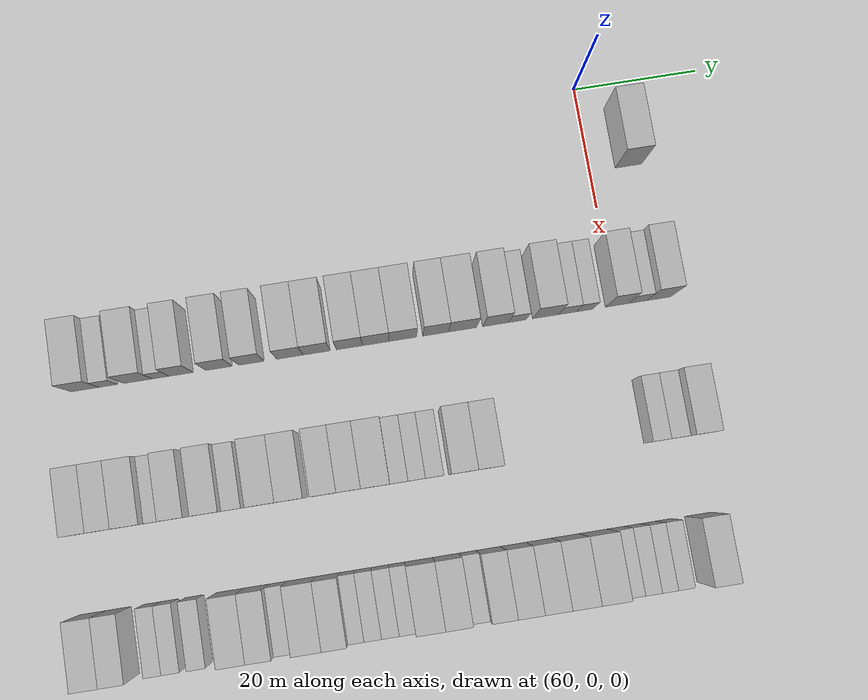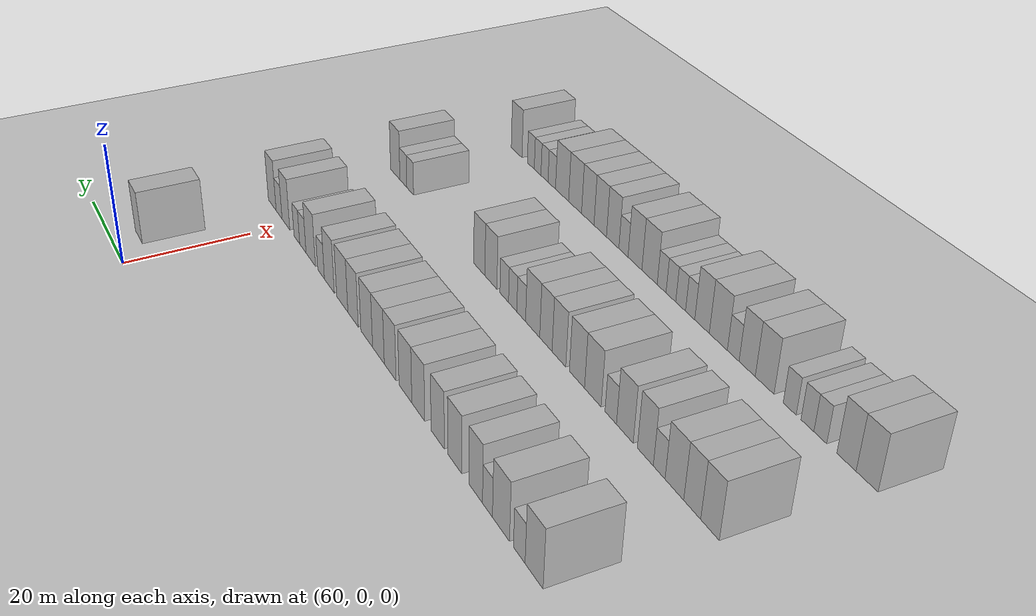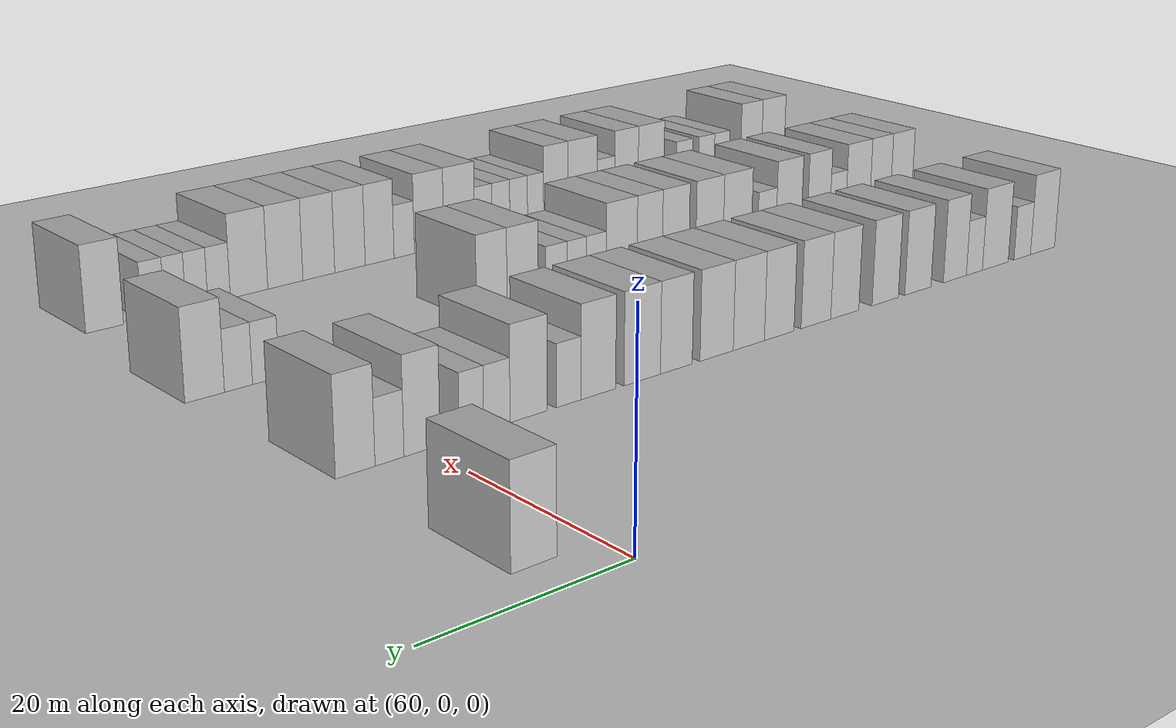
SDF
<sdf version="1.6">
 <world name="default">
  <include>
   <name>ground_plane_2</name>
   <uri>model://HANNAS_ground_plane</uri>
   <pose>100 0 0  0 0 0</pose>
  </include>
  <model name="building_468">
   <static>1</static>
   <pose>69.0000 6.3513 0 0.000000 0.000000 0.000000</pose>
   <link name="link">
    <pose>0 0 4.50 0 0 0</pose>
    <collision name="collision"><geometry><box><size>10.0000 4.3464 9.0000</size></box></geometry></collision>
    <visual name="visual">
     <cast_shadows>0</cast_shadows>
     <geometry><box><size>10.0000 4.3464 9.0000</size></box></geometry>
     <material>
      <script>
       <uri>model://HANNAS_wall/materials/scripts</uri>
       <uri>model://HANNAS_wall/materials/textures</uri>
       <name>vrc/HANNAS_wall</name>
      </script>
     </material>
    </visual>
   </link>
  </model>
  <model name="building_636">
   <static>1</static>
   <pose>91.0000 -83.9862 0 0.000000 0.000000 0.000000</pose>
   <link name="link">
    <pose>0 0 4.50 0 0 0</pose>
    <collision name="collision"><geometry><box><size>10.0000 4.3414 9.0000</size></box></geometry></collision>
    <visual name="visual">
     <cast_shadows>0</cast_shadows>
     <geometry><box><size>10.0000 4.3414 9.0000</size></box></geometry>
     <material>
      <script>
       <uri>model://HANNAS_wall/materials/scripts</uri>
       <uri>model://HANNAS_wall/materials/textures</uri>
       <name>vrc/HANNAS_wall</name>
      </script>
     </material>
    </visual>
   </link>
  </model>
  <model name="building_637">
   <static>1</static>
   <pose>91.0000 -80.3657 0 0.000000 0.000000 0.000000</pose>
   <link name="link">
    <pose>0 0 3.00 0 0 0</pose>
    <collision name="collision"><geometry><box><size>10.0000 2.8997 6.0000</size></box></geometry></collision>
    <visual name="visual">
     <cast_shadows>0</cast_shadows>
     <geometry><box><size>10.0000 2.8997 6.0000</size></box></geometry>
     <material>
      <script>
       <uri>model://HANNAS_wall/materials/scripts</uri>
       <uri>model://HANNAS_wall/materials/textures</uri>
       <name>vrc/HANNAS_wall</name>
      </script>
     </material>
    </visual>
   </link>
  </model>
  <model name="building_638">
   <static>1</static>
   <pose>91.0000 -75.6958 0 0.000000 0.000000 0.000000</pose>
   <link name="link">
    <pose>0 0 4.50 0 0 0</pose>
    <collision name="collision"><geometry><box><size>10.0000 4.4400 9.0000</size></box></geometry></collision>
    <visual name="visual">
     <cast_shadows>0</cast_shadows>
     <geometry><box><size>10.0000 4.4400 9.0000</size></box></geometry>
     <material>
      <script>
       <uri>model://HANNAS_wall/materials/scripts</uri>
       <uri>model://HANNAS_wall/materials/textures</uri>
       <name>vrc/HANNAS_wall</name>
      </script>
     </material>
    </visual>
   </link>
  </model>
  <model name="building_639">
   <static>1</static>
   <pose>91.0000 -72.1327 0 0.000000 0.000000 0.000000</pose>
   <link name="link">
    <pose>0 0 3.00 0 0 0</pose>
    <collision name="collision"><geometry><box><size>10.0000 2.6863 6.0000</size></box></geometry></collision>
    <visual name="visual">
     <cast_shadows>0</cast_shadows>
     <geometry><box><size>10.0000 2.6863 6.0000</size></box></geometry>
     <material>
      <script>
       <uri>model://HANNAS_wall/materials/scripts</uri>
       <uri>model://HANNAS_wall/materials/textures</uri>
       <name>vrc/HANNAS_wall</name>
      </script>
     </material>
    </visual>
   </link>
  </model>
  <model name="building_640">
   <static>1</static>
   <pose>91.0000 -68.8923 0 0.000000 0.000000 0.000000</pose>
   <link name="link">
    <pose>0 0 4.50 0 0 0</pose>
    <collision name="collision"><geometry><box><size>10.0000 3.7945 9.0000</size></box></geometry></collision>
    <visual name="visual">
     <cast_shadows>0</cast_shadows>
     <geometry><box><size>10.0000 3.7945 9.0000</size></box></geometry>
     <material>
      <script>
       <uri>model://HANNAS_wall/materials/scripts</uri>
       <uri>model://HANNAS_wall/materials/textures</uri>
       <name>vrc/HANNAS_wall</name>
      </script>
     </material>
    </visual>
   </link>
  </model>
  <model name="building_641">
   <static>1</static>
   <pose>91.0000 -62.9117 0 0.000000 0.000000 0.000000</pose>
   <link name="link">
    <pose>0 0 4.50 0 0 0</pose>
    <collision name="collision"><geometry><box><size>10.0000 4.1666 9.0000</size></box></geometry></collision>
    <visual name="visual">
     <cast_shadows>0</cast_shadows>
     <geometry><box><size>10.0000 4.1666 9.0000</size></box></geometry>
     <material>
      <script>
       <uri>model://HANNAS_wall/materials/scripts</uri>
       <uri>model://HANNAS_wall/materials/textures</uri>
       <name>vrc/HANNAS_wall</name>
      </script>
     </material>
    </visual>
   </link>
  </model>
  <model name="building_642">
   <static>1</static>
   <pose>91.0000 -57.8082 0 0.000000 0.000000 0.000000</pose>
   <link name="link">
    <pose>0 0 4.50 0 0 0</pose>
    <collision name="collision"><geometry><box><size>10.0000 4.0405 9.0000</size></box></geometry></collision>
    <visual name="visual">
     <cast_shadows>0</cast_shadows>
     <geometry><box><size>10.0000 4.0405 9.0000</size></box></geometry>
     <material>
      <script>
       <uri>model://HANNAS_wall/materials/scripts</uri>
       <uri>model://HANNAS_wall/materials/textures</uri>
       <name>vrc/HANNAS_wall</name>
      </script>
     </material>
    </visual>
   </link>
  </model>
  <model name="building_643">
   <static>1</static>
   <pose>91.0000 -51.7124 0 0.000000 0.000000 0.000000</pose>
   <link name="link">
    <pose>0 0 4.50 0 0 0</pose>
    <collision name="collision"><geometry><box><size>10.0000 4.1511 9.0000</size></box></geometry></collision>
    <visual name="visual">
     <cast_shadows>0</cast_shadows>
     <geometry><box><size>10.0000 4.1511 9.0000</size></box></geometry>
     <material>
      <script>
       <uri>model://HANNAS_wall/materials/scripts</uri>
       <uri>model://HANNAS_wall/materials/textures</uri>
       <name>vrc/HANNAS_wall</name>
      </script>
     </material>
    </visual>
   </link>
  </model>
  <model name="building_644">
   <static>1</static>
   <pose>91.0000 -47.4999 0 0.000000 0.000000 0.000000</pose>
   <link name="link">
    <pose>0 0 4.50 0 0 0</pose>
    <collision name="collision"><geometry><box><size>10.0000 4.2740 9.0000</size></box></geometry></collision>
    <visual name="visual">
     <cast_shadows>0</cast_shadows>
     <geometry><box><size>10.0000 4.2740 9.0000</size></box></geometry>
     <material>
      <script>
       <uri>model://HANNAS_wall/materials/scripts</uri>
       <uri>model://HANNAS_wall/materials/textures</uri>
       <name>vrc/HANNAS_wall</name>
      </script>
     </material>
    </visual>
   </link>
  </model>
  <model name="building_645">
   <static>1</static>
   <pose>91.0000 -42.3046 0 0.000000 0.000000 0.000000</pose>
   <link name="link">
    <pose>0 0 4.50 0 0 0</pose>
    <collision name="collision"><geometry><box><size>10.0000 4.1164 9.0000</size></box></geometry></collision>
    <visual name="visual">
     <cast_shadows>0</cast_shadows>
     <geometry><box><size>10.0000 4.1164 9.0000</size></box></geometry>
     <material>
      <script>
       <uri>model://HANNAS_wall/materials/scripts</uri>
       <uri>model://HANNAS_wall/materials/textures</uri>
       <name>vrc/HANNAS_wall</name>
      </script>
     </material>
    </visual>
   </link>
  </model>
  <model name="building_646">
   <static>1</static>
   <pose>91.0000 -38.1368 0 0.000000 0.000000 0.000000</pose>
   <link name="link">
    <pose>0 0 4.50 0 0 0</pose>
    <collision name="collision"><geometry><box><size>10.0000 4.2192 9.0000</size></box></geometry></collision>
    <visual name="visual">
     <cast_shadows>0</cast_shadows>
     <geometry><box><size>10.0000 4.2192 9.0000</size></box></geometry>
     <material>
      <script>
       <uri>model://HANNAS_wall/materials/scripts</uri>
       <uri>model://HANNAS_wall/materials/textures</uri>
       <name>vrc/HANNAS_wall</name>
      </script>
     </material>
    </visual>
   </link>
  </model>
  <model name="building_647">
   <static>1</static>
   <pose>91.0000 -33.8407 0 0.000000 0.000000 0.000000</pose>
   <link name="link">
    <pose>0 0 4.50 0 0 0</pose>
    <collision name="collision"><geometry><box><size>10.0000 4.3729 9.0000</size></box></geometry></collision>
    <visual name="visual">
     <cast_shadows>0</cast_shadows>
     <geometry><box><size>10.0000 4.3729 9.0000</size></box></geometry>
     <material>
      <script>
       <uri>model://HANNAS_wall/materials/scripts</uri>
       <uri>model://HANNAS_wall/materials/textures</uri>
       <name>vrc/HANNAS_wall</name>
      </script>
     </material>
    </visual>
   </link>
  </model>
  <model name="building_648">
   <static>1</static>
   <pose>91.0000 -28.6353 0 0.000000 0.000000 0.000000</pose>
   <link name="link">
    <pose>0 0 4.50 0 0 0</pose>
    <collision name="collision"><geometry><box><size>10.0000 4.0381 9.0000</size></box></geometry></collision>
    <visual name="visual">
     <cast_shadows>0</cast_shadows>
     <geometry><box><size>10.0000 4.0381 9.0000</size></box></geometry>
     <material>
      <script>
       <uri>model://HANNAS_wall/materials/scripts</uri>
       <uri>model://HANNAS_wall/materials/textures</uri>
       <name>vrc/HANNAS_wall</name>
      </script>
     </material>
    </visual>
   </link>
  </model>
  <model name="building_649">
   <static>1</static>
   <pose>91.0000 -24.3789 0 0.000000 0.000000 0.000000</pose>
   <link name="link">
    <pose>0 0 4.50 0 0 0</pose>
    <collision name="collision"><geometry><box><size>10.0000 4.4747 9.0000</size></box></geometry></collision>
    <visual name="visual">
     <cast_shadows>0</cast_shadows>
     <geometry><box><size>10.0000 4.4747 9.0000</size></box></geometry>
     <material>
      <script>
       <uri>model://HANNAS_wall/materials/scripts</uri>
       <uri>model://HANNAS_wall/materials/textures</uri>
       <name>vrc/HANNAS_wall</name>
      </script>
     </material>
    </visual>
   </link>
  </model>
  <model name="building_650">
   <static>1</static>
   <pose>91.0000 -19.0808 0 0.000000 0.000000 0.000000</pose>
   <link name="link">
    <pose>0 0 4.50 0 0 0</pose>
    <collision name="collision"><geometry><box><size>10.0000 4.1214 9.0000</size></box></geometry></collision>
    <visual name="visual">
     <cast_shadows>0</cast_shadows>
     <geometry><box><size>10.0000 4.1214 9.0000</size></box></geometry>
     <material>
      <script>
       <uri>model://HANNAS_wall/materials/scripts</uri>
       <uri>model://HANNAS_wall/materials/textures</uri>
       <name>vrc/HANNAS_wall</name>
      </script>
     </material>
    </visual>
   </link>
  </model>
  <model name="building_651">
   <static>1</static>
   <pose>91.0000 -15.5852 0 0.000000 0.000000 0.000000</pose>
   <link name="link">
    <pose>0 0 3.00 0 0 0</pose>
    <collision name="collision"><geometry><box><size>10.0000 2.8698 6.0000</size></box></geometry></collision>
    <visual name="visual">
     <cast_shadows>0</cast_shadows>
     <geometry><box><size>10.0000 2.8698 6.0000</size></box></geometry>
     <material>
      <script>
       <uri>model://HANNAS_wall/materials/scripts</uri>
       <uri>model://HANNAS_wall/materials/textures</uri>
       <name>vrc/HANNAS_wall</name>
      </script>
     </material>
    </visual>
   </link>
  </model>
  <model name="building_652">
   <static>1</static>
   <pose>91.0000 -11.0698 0 0.000000 0.000000 0.000000</pose>
   <link name="link">
    <pose>0 0 4.50 0 0 0</pose>
    <collision name="collision"><geometry><box><size>10.0000 4.1611 9.0000</size></box></geometry></collision>
    <visual name="visual">
     <cast_shadows>0</cast_shadows>
     <geometry><box><size>10.0000 4.1611 9.0000</size></box></geometry>
     <material>
      <script>
       <uri>model://HANNAS_wall/materials/scripts</uri>
       <uri>model://HANNAS_wall/materials/textures</uri>
       <name>vrc/HANNAS_wall</name>
      </script>
     </material>
    </visual>
   </link>
  </model>
  <model name="building_653">
   <static>1</static>
   <pose>91.0000 -7.5494 0 0.000000 0.000000 0.000000</pose>
   <link name="link">
    <pose>0 0 3.00 0 0 0</pose>
    <collision name="collision"><geometry><box><size>10.0000 2.8796 6.0000</size></box></geometry></collision>
    <visual name="visual">
     <cast_shadows>0</cast_shadows>
     <geometry><box><size>10.0000 2.8796 6.0000</size></box></geometry>
     <material>
      <script>
       <uri>model://HANNAS_wall/materials/scripts</uri>
       <uri>model://HANNAS_wall/materials/textures</uri>
       <name>vrc/HANNAS_wall</name>
      </script>
     </material>
    </visual>
   </link>
  </model>
  <model name="building_654">
   <static>1</static>
   <pose>91.0000 -4.8065 0 0.000000 0.000000 0.000000</pose>
   <link name="link">
    <pose>0 0 3.00 0 0 0</pose>
    <collision name="collision"><geometry><box><size>10.0000 2.6063 6.0000</size></box></geometry></collision>
    <visual name="visual">
     <cast_shadows>0</cast_shadows>
     <geometry><box><size>10.0000 2.6063 6.0000</size></box></geometry>
     <material>
      <script>
       <uri>model://HANNAS_wall/materials/scripts</uri>
       <uri>model://HANNAS_wall/materials/textures</uri>
       <name>vrc/HANNAS_wall</name>
      </script>
     </material>
    </visual>
   </link>
  </model>
  <model name="building_655">
   <static>1</static>
   <pose>91.0000 0.3535 0 0.000000 0.000000 0.000000</pose>
   <link name="link">
    <pose>0 0 4.50 0 0 0</pose>
    <collision name="collision"><geometry><box><size>10.0000 3.7136 9.0000</size></box></geometry></collision>
    <visual name="visual">
     <cast_shadows>0</cast_shadows>
     <geometry><box><size>10.0000 3.7136 9.0000</size></box></geometry>
     <material>
      <script>
       <uri>model://HANNAS_wall/materials/scripts</uri>
       <uri>model://HANNAS_wall/materials/textures</uri>
       <name>vrc/HANNAS_wall</name>
      </script>
     </material>
    </visual>
   </link>
  </model>
  <model name="building_656">
   <static>1</static>
   <pose>91.0000 3.6603 0 0.000000 0.000000 0.000000</pose>
   <link name="link">
    <pose>0 0 3.00 0 0 0</pose>
    <collision name="collision"><geometry><box><size>10.0000 2.8999 6.0000</size></box></geometry></collision>
    <visual name="visual">
     <cast_shadows>0</cast_shadows>
     <geometry><box><size>10.0000 2.8999 6.0000</size></box></geometry>
     <material>
      <script>
       <uri>model://HANNAS_wall/materials/scripts</uri>
       <uri>model://HANNAS_wall/materials/textures</uri>
       <name>vrc/HANNAS_wall</name>
      </script>
     </material>
    </visual>
   </link>
  </model>
  <model name="building_657">
   <static>1</static>
   <pose>91.0000 7.0460 0 0.000000 0.000000 0.000000</pose>
   <link name="link">
    <pose>0 0 4.50 0 0 0</pose>
    <collision name="collision"><geometry><box><size>10.0000 3.8716 9.0000</size></box></geometry></collision>
    <visual name="visual">
     <cast_shadows>0</cast_shadows>
     <geometry><box><size>10.0000 3.8716 9.0000</size></box></geometry>
     <material>
      <script>
       <uri>model://HANNAS_wall/materials/scripts</uri>
       <uri>model://HANNAS_wall/materials/textures</uri>
       <name>vrc/HANNAS_wall</name>
      </script>
     </material>
    </visual>
   </link>
  </model>
  <model name="building_808">
   <static>1</static>
   <pose>113.0000 -86.0175 0 0.000000 0.000000 0.000000</pose>
   <link name="link">
    <pose>0 0 4.50 0 0 0</pose>
    <collision name="collision"><geometry><box><size>10.0000 3.8777 9.0000</size></box></geometry></collision>
    <visual name="visual">
     <cast_shadows>0</cast_shadows>
     <geometry><box><size>10.0000 3.8777 9.0000</size></box></geometry>
     <material>
      <script>
       <uri>model://HANNAS_wall/materials/scripts</uri>
       <uri>model://HANNAS_wall/materials/textures</uri>
       <name>vrc/HANNAS_wall</name>
      </script>
     </material>
    </visual>
   </link>
  </model>
  <model name="building_809">
   <static>1</static>
   <pose>113.0000 -82.2497 0 0.000000 0.000000 0.000000</pose>
   <link name="link">
    <pose>0 0 4.50 0 0 0</pose>
    <collision name="collision"><geometry><box><size>10.0000 3.6580 9.0000</size></box></geometry></collision>
    <visual name="visual">
     <cast_shadows>0</cast_shadows>
     <geometry><box><size>10.0000 3.6580 9.0000</size></box></geometry>
     <material>
      <script>
       <uri>model://HANNAS_wall/materials/scripts</uri>
       <uri>model://HANNAS_wall/materials/textures</uri>
       <name>vrc/HANNAS_wall</name>
      </script>
     </material>
    </visual>
   </link>
  </model>
  <model name="building_810">
   <static>1</static>
   <pose>113.0000 -78.3382 0 0.000000 0.000000 0.000000</pose>
   <link name="link">
    <pose>0 0 4.50 0 0 0</pose>
    <collision name="collision"><geometry><box><size>10.0000 4.1650 9.0000</size></box></geometry></collision>
    <visual name="visual">
     <cast_shadows>0</cast_shadows>
     <geometry><box><size>10.0000 4.1650 9.0000</size></box></geometry>
     <material>
      <script>
       <uri>model://HANNAS_wall/materials/scripts</uri>
       <uri>model://HANNAS_wall/materials/textures</uri>
       <name>vrc/HANNAS_wall</name>
      </script>
     </material>
    </visual>
   </link>
  </model>
  <model name="building_811">
   <static>1</static>
   <pose>113.0000 -74.9124 0 0.000000 0.000000 0.000000</pose>
   <link name="link">
    <pose>0 0 3.00 0 0 0</pose>
    <collision name="collision"><geometry><box><size>10.0000 2.6865 6.0000</size></box></geometry></collision>
    <visual name="visual">
     <cast_shadows>0</cast_shadows>
     <geometry><box><size>10.0000 2.6865 6.0000</size></box></geometry>
     <material>
      <script>
       <uri>model://HANNAS_wall/materials/scripts</uri>
       <uri>model://HANNAS_wall/materials/textures</uri>
       <name>vrc/HANNAS_wall</name>
      </script>
     </material>
    </visual>
   </link>
  </model>
  <model name="building_812">
   <static>1</static>
   <pose>113.0000 -71.6795 0 0.000000 0.000000 0.000000</pose>
   <link name="link">
    <pose>0 0 4.50 0 0 0</pose>
    <collision name="collision"><geometry><box><size>10.0000 3.7793 9.0000</size></box></geometry></collision>
    <visual name="visual">
     <cast_shadows>0</cast_shadows>
     <geometry><box><size>10.0000 3.7793 9.0000</size></box></geometry>
     <material>
      <script>
       <uri>model://HANNAS_wall/materials/scripts</uri>
       <uri>model://HANNAS_wall/materials/textures</uri>
       <name>vrc/HANNAS_wall</name>
      </script>
     </material>
    </visual>
   </link>
  </model>
  <model name="building_813">
   <static>1</static>
   <pose>113.0000 -66.7289 0 0.000000 0.000000 0.000000</pose>
   <link name="link">
    <pose>0 0 4.50 0 0 0</pose>
    <collision name="collision"><geometry><box><size>10.0000 4.1219 9.0000</size></box></geometry></collision>
    <visual name="visual">
     <cast_shadows>0</cast_shadows>
     <geometry><box><size>10.0000 4.1219 9.0000</size></box></geometry>
     <material>
      <script>
       <uri>model://HANNAS_wall/materials/scripts</uri>
       <uri>model://HANNAS_wall/materials/textures</uri>
       <name>vrc/HANNAS_wall</name>
      </script>
     </material>
    </visual>
   </link>
  </model>
  <model name="building_814">
   <static>1</static>
   <pose>113.0000 -63.2073 0 0.000000 0.000000 0.000000</pose>
   <link name="link">
    <pose>0 0 3.00 0 0 0</pose>
    <collision name="collision"><geometry><box><size>10.0000 2.9214 6.0000</size></box></geometry></collision>
    <visual name="visual">
     <cast_shadows>0</cast_shadows>
     <geometry><box><size>10.0000 2.9214 6.0000</size></box></geometry>
     <material>
      <script>
       <uri>model://HANNAS_wall/materials/scripts</uri>
       <uri>model://HANNAS_wall/materials/textures</uri>
       <name>vrc/HANNAS_wall</name>
      </script>
     </material>
    </visual>
   </link>
  </model>
  <model name="building_815">
   <static>1</static>
   <pose>113.0000 -58.5537 0 0.000000 0.000000 0.000000</pose>
   <link name="link">
    <pose>0 0 4.50 0 0 0</pose>
    <collision name="collision"><geometry><box><size>10.0000 4.3857 9.0000</size></box></geometry></collision>
    <visual name="visual">
     <cast_shadows>0</cast_shadows>
     <geometry><box><size>10.0000 4.3857 9.0000</size></box></geometry>
     <material>
      <script>
       <uri>model://HANNAS_wall/materials/scripts</uri>
       <uri>model://HANNAS_wall/materials/textures</uri>
       <name>vrc/HANNAS_wall</name>
      </script>
     </material>
    </visual>
   </link>
  </model>
  <model name="building_816">
   <static>1</static>
   <pose>113.0000 -54.2807 0 0.000000 0.000000 0.000000</pose>
   <link name="link">
    <pose>0 0 4.50 0 0 0</pose>
    <collision name="collision"><geometry><box><size>10.0000 4.1604 9.0000</size></box></geometry></collision>
    <visual name="visual">
     <cast_shadows>0</cast_shadows>
     <geometry><box><size>10.0000 4.1604 9.0000</size></box></geometry>
     <material>
      <script>
       <uri>model://HANNAS_wall/materials/scripts</uri>
       <uri>model://HANNAS_wall/materials/textures</uri>
       <name>vrc/HANNAS_wall</name>
      </script>
     </material>
    </visual>
   </link>
  </model>
  <model name="building_817">
   <static>1</static>
   <pose>113.0000 -49.2377 0 0.000000 0.000000 0.000000</pose>
   <link name="link">
    <pose>0 0 4.50 0 0 0</pose>
    <collision name="collision"><geometry><box><size>10.0000 3.9256 9.0000</size></box></geometry></collision>
    <visual name="visual">
     <cast_shadows>0</cast_shadows>
     <geometry><box><size>10.0000 3.9256 9.0000</size></box></geometry>
     <material>
      <script>
       <uri>model://HANNAS_wall/materials/scripts</uri>
       <uri>model://HANNAS_wall/materials/textures</uri>
       <name>vrc/HANNAS_wall</name>
      </script>
     </material>
    </visual>
   </link>
  </model>
  <model name="building_818">
   <static>1</static>
   <pose>113.0000 -45.4627 0 0.000000 0.000000 0.000000</pose>
   <link name="link">
    <pose>0 0 4.50 0 0 0</pose>
    <collision name="collision"><geometry><box><size>10.0000 3.6245 9.0000</size></box></geometry></collision>
    <visual name="visual">
     <cast_shadows>0</cast_shadows>
     <geometry><box><size>10.0000 3.6245 9.0000</size></box></geometry>
     <material>
      <script>
       <uri>model://HANNAS_wall/materials/scripts</uri>
       <uri>model://HANNAS_wall/materials/textures</uri>
       <name>vrc/HANNAS_wall</name>
      </script>
     </material>
    </visual>
   </link>
  </model>
  <model name="building_819">
   <static>1</static>
   <pose>113.0000 -41.5003 0 0.000000 0.000000 0.000000</pose>
   <link name="link">
    <pose>0 0 4.50 0 0 0</pose>
    <collision name="collision"><geometry><box><size>10.0000 4.3004 9.0000</size></box></geometry></collision>
    <visual name="visual">
     <cast_shadows>0</cast_shadows>
     <geometry><box><size>10.0000 4.3004 9.0000</size></box></geometry>
     <material>
      <script>
       <uri>model://HANNAS_wall/materials/scripts</uri>
       <uri>model://HANNAS_wall/materials/textures</uri>
       <name>vrc/HANNAS_wall</name>
      </script>
     </material>
    </visual>
   </link>
  </model>
  <model name="building_820">
   <static>1</static>
   <pose>113.0000 -37.9817 0 0.000000 0.000000 0.000000</pose>
   <link name="link">
    <pose>0 0 3.00 0 0 0</pose>
    <collision name="collision"><geometry><box><size>10.0000 2.7368 6.0000</size></box></geometry></collision>
    <visual name="visual">
     <cast_shadows>0</cast_shadows>
     <geometry><box><size>10.0000 2.7368 6.0000</size></box></geometry>
     <material>
      <script>
       <uri>model://HANNAS_wall/materials/scripts</uri>
       <uri>model://HANNAS_wall/materials/textures</uri>
       <name>vrc/HANNAS_wall</name>
      </script>
     </material>
    </visual>
   </link>
  </model>
  <model name="building_821">
   <static>1</static>
   <pose>113.0000 -35.3040 0 0.000000 0.000000 0.000000</pose>
   <link name="link">
    <pose>0 0 3.00 0 0 0</pose>
    <collision name="collision"><geometry><box><size>10.0000 2.6185 6.0000</size></box></geometry></collision>
    <visual name="visual">
     <cast_shadows>0</cast_shadows>
     <geometry><box><size>10.0000 2.6185 6.0000</size></box></geometry>
     <material>
      <script>
       <uri>model://HANNAS_wall/materials/scripts</uri>
       <uri>model://HANNAS_wall/materials/textures</uri>
       <name>vrc/HANNAS_wall</name>
      </script>
     </material>
    </visual>
   </link>
  </model>
  <model name="building_822">
   <static>1</static>
   <pose>113.0000 -32.6008 0 0.000000 0.000000 0.000000</pose>
   <link name="link">
    <pose>0 0 3.00 0 0 0</pose>
    <collision name="collision"><geometry><box><size>10.0000 2.7881 6.0000</size></box></geometry></collision>
    <visual name="visual">
     <cast_shadows>0</cast_shadows>
     <geometry><box><size>10.0000 2.7881 6.0000</size></box></geometry>
     <material>
      <script>
       <uri>model://HANNAS_wall/materials/scripts</uri>
       <uri>model://HANNAS_wall/materials/textures</uri>
       <name>vrc/HANNAS_wall</name>
      </script>
     </material>
    </visual>
   </link>
  </model>
  <model name="building_823">
   <static>1</static>
   <pose>113.0000 -28.1898 0 0.000000 0.000000 0.000000</pose>
   <link name="link">
    <pose>0 0 4.50 0 0 0</pose>
    <collision name="collision"><geometry><box><size>10.0000 4.0340 9.0000</size></box></geometry></collision>
    <visual name="visual">
     <cast_shadows>0</cast_shadows>
     <geometry><box><size>10.0000 4.0340 9.0000</size></box></geometry>
     <material>
      <script>
       <uri>model://HANNAS_wall/materials/scripts</uri>
       <uri>model://HANNAS_wall/materials/textures</uri>
       <name>vrc/HANNAS_wall</name>
      </script>
     </material>
    </visual>
   </link>
  </model>
  <model name="building_824">
   <static>1</static>
   <pose>113.0000 -24.2489 0 0.000000 0.000000 0.000000</pose>
   <link name="link">
    <pose>0 0 4.50 0 0 0</pose>
    <collision name="collision"><geometry><box><size>10.0000 3.8478 9.0000</size></box></geometry></collision>
    <visual name="visual">
     <cast_shadows>0</cast_shadows>
     <geometry><box><size>10.0000 3.8478 9.0000</size></box></geometry>
     <material>
      <script>
       <uri>model://HANNAS_wall/materials/scripts</uri>
       <uri>model://HANNAS_wall/materials/textures</uri>
       <name>vrc/HANNAS_wall</name>
      </script>
     </material>
    </visual>
   </link>
  </model>
  <model name="building_825">
   <static>1</static>
   <pose>113.0000 1.8732 0 0.000000 0.000000 0.000000</pose>
   <link name="link">
    <pose>0 0 3.00 0 0 0</pose>
    <collision name="collision"><geometry><box><size>10.0000 2.7987 6.0000</size></box></geometry></collision>
    <visual name="visual">
     <cast_shadows>0</cast_shadows>
     <geometry><box><size>10.0000 2.7987 6.0000</size></box></geometry>
     <material>
      <script>
       <uri>model://HANNAS_wall/materials/scripts</uri>
       <uri>model://HANNAS_wall/materials/textures</uri>
       <name>vrc/HANNAS_wall</name>
      </script>
     </material>
    </visual>
   </link>
  </model>
  <model name="building_826">
   <static>1</static>
   <pose>113.0000 4.7271 0 0.000000 0.000000 0.000000</pose>
   <link name="link">
    <pose>0 0 3.00 0 0 0</pose>
    <collision name="collision"><geometry><box><size>10.0000 2.9091 6.0000</size></box></geometry></collision>
    <visual name="visual">
     <cast_shadows>0</cast_shadows>
     <geometry><box><size>10.0000 2.9091 6.0000</size></box></geometry>
     <material>
      <script>
       <uri>model://HANNAS_wall/materials/scripts</uri>
       <uri>model://HANNAS_wall/materials/textures</uri>
       <name>vrc/HANNAS_wall</name>
      </script>
     </material>
    </visual>
   </link>
  </model>
  <model name="building_827">
   <static>1</static>
   <pose>113.0000 8.1925 0 0.000000 0.000000 0.000000</pose>
   <link name="link">
    <pose>0 0 4.50 0 0 0</pose>
    <collision name="collision"><geometry><box><size>10.0000 4.0218 9.0000</size></box></geometry></collision>
    <visual name="visual">
     <cast_shadows>0</cast_shadows>
     <geometry><box><size>10.0000 4.0218 9.0000</size></box></geometry>
     <material>
      <script>
       <uri>model://HANNAS_wall/materials/scripts</uri>
       <uri>model://HANNAS_wall/materials/textures</uri>
       <name>vrc/HANNAS_wall</name>
      </script>
     </material>
    </visual>
   </link>
  </model>
  <model name="building_999">
   <static>1</static>
   <pose>135.0000 -86.9382 0 0.000000 0.000000 0.000000</pose>
   <link name="link">
    <pose>0 0 4.50 0 0 0</pose>
    <collision name="collision"><geometry><box><size>10.0000 4.1448 9.0000</size></box></geometry></collision>
    <visual name="visual">
     <cast_shadows>0</cast_shadows>
     <geometry><box><size>10.0000 4.1448 9.0000</size></box></geometry>
     <material>
      <script>
       <uri>model://HANNAS_wall/materials/scripts</uri>
       <uri>model://HANNAS_wall/materials/textures</uri>
       <name>vrc/HANNAS_wall</name>
      </script>
     </material>
    </visual>
   </link>
  </model>
  <model name="building_1000">
   <static>1</static>
   <pose>135.0000 -82.9886 0 0.000000 0.000000 0.000000</pose>
   <link name="link">
    <pose>0 0 4.50 0 0 0</pose>
    <collision name="collision"><geometry><box><size>10.0000 3.7544 9.0000</size></box></geometry></collision>
    <visual name="visual">
     <cast_shadows>0</cast_shadows>
     <geometry><box><size>10.0000 3.7544 9.0000</size></box></geometry>
     <material>
      <script>
       <uri>model://HANNAS_wall/materials/scripts</uri>
       <uri>model://HANNAS_wall/materials/textures</uri>
       <name>vrc/HANNAS_wall</name>
      </script>
     </material>
    </visual>
   </link>
  </model>
  <model name="building_1001">
   <static>1</static>
   <pose>135.0000 -77.8011 0 0.000000 0.000000 0.000000</pose>
   <link name="link">
    <pose>0 0 3.00 0 0 0</pose>
    <collision name="collision"><geometry><box><size>10.0000 2.6205 6.0000</size></box></geometry></collision>
    <visual name="visual">
     <cast_shadows>0</cast_shadows>
     <geometry><box><size>10.0000 2.6205 6.0000</size></box></geometry>
     <material>
      <script>
       <uri>model://HANNAS_wall/materials/scripts</uri>
       <uri>model://HANNAS_wall/materials/textures</uri>
       <name>vrc/HANNAS_wall</name>
      </script>
     </material>
    </visual>
   </link>
  </model>
  <model name="building_1002">
   <static>1</static>
   <pose>135.0000 -75.1418 0 0.000000 0.000000 0.000000</pose>
   <link name="link">
    <pose>0 0 3.00 0 0 0</pose>
    <collision name="collision"><geometry><box><size>10.0000 2.6983 6.0000</size></box></geometry></collision>
    <visual name="visual">
     <cast_shadows>0</cast_shadows>
     <geometry><box><size>10.0000 2.6983 6.0000</size></box></geometry>
     <material>
      <script>
       <uri>model://HANNAS_wall/materials/scripts</uri>
       <uri>model://HANNAS_wall/materials/textures</uri>
       <name>vrc/HANNAS_wall</name>
      </script>
     </material>
    </visual>
   </link>
  </model>
  <model name="building_1003">
   <static>1</static>
   <pose>135.0000 -71.3875 0 0.000000 0.000000 0.000000</pose>
   <link name="link">
    <pose>0 0 3.00 0 0 0</pose>
    <collision name="collision"><geometry><box><size>10.0000 2.8102 6.0000</size></box></geometry></collision>
    <visual name="visual">
     <cast_shadows>0</cast_shadows>
     <geometry><box><size>10.0000 2.8102 6.0000</size></box></geometry>
     <material>
      <script>
       <uri>model://HANNAS_wall/materials/scripts</uri>
       <uri>model://HANNAS_wall/materials/textures</uri>
       <name>vrc/HANNAS_wall</name>
      </script>
     </material>
    </visual>
   </link>
  </model>
  <model name="building_1004">
   <static>1</static>
   <pose>135.0000 -65.8659 0 0.000000 0.000000 0.000000</pose>
   <link name="link">
    <pose>0 0 4.50 0 0 0</pose>
    <collision name="collision"><geometry><box><size>10.0000 4.2329 9.0000</size></box></geometry></collision>
    <visual name="visual">
     <cast_shadows>0</cast_shadows>
     <geometry><box><size>10.0000 4.2329 9.0000</size></box></geometry>
     <material>
      <script>
       <uri>model://HANNAS_wall/materials/scripts</uri>
       <uri>model://HANNAS_wall/materials/textures</uri>
       <name>vrc/HANNAS_wall</name>
      </script>
     </material>
    </visual>
   </link>
  </model>
  <model name="building_1005">
   <static>1</static>
   <pose>135.0000 -61.8659 0 0.000000 0.000000 0.000000</pose>
   <link name="link">
    <pose>0 0 4.50 0 0 0</pose>
    <collision name="collision"><geometry><box><size>10.0000 3.7671 9.0000</size></box></geometry></collision>
    <visual name="visual">
     <cast_shadows>0</cast_shadows>
     <geometry><box><size>10.0000 3.7671 9.0000</size></box></geometry>
     <material>
      <script>
       <uri>model://HANNAS_wall/materials/scripts</uri>
       <uri>model://HANNAS_wall/materials/textures</uri>
       <name>vrc/HANNAS_wall</name>
      </script>
     </material>
    </visual>
   </link>
  </model>
  <model name="building_1006">
   <static>1</static>
   <pose>135.0000 -58.5855 0 0.000000 0.000000 0.000000</pose>
   <link name="link">
    <pose>0 0 3.00 0 0 0</pose>
    <collision name="collision"><geometry><box><size>10.0000 2.7936 6.0000</size></box></geometry></collision>
    <visual name="visual">
     <cast_shadows>0</cast_shadows>
     <geometry><box><size>10.0000 2.7936 6.0000</size></box></geometry>
     <material>
      <script>
       <uri>model://HANNAS_wall/materials/scripts</uri>
       <uri>model://HANNAS_wall/materials/textures</uri>
       <name>vrc/HANNAS_wall</name>
      </script>
     </material>
    </visual>
   </link>
  </model>
  <model name="building_1007">
   <static>1</static>
   <pose>135.0000 -54.9673 0 0.000000 0.000000 0.000000</pose>
   <link name="link">
    <pose>0 0 4.50 0 0 0</pose>
    <collision name="collision"><geometry><box><size>10.0000 4.4428 9.0000</size></box></geometry></collision>
    <visual name="visual">
     <cast_shadows>0</cast_shadows>
     <geometry><box><size>10.0000 4.4428 9.0000</size></box></geometry>
     <material>
      <script>
       <uri>model://HANNAS_wall/materials/scripts</uri>
       <uri>model://HANNAS_wall/materials/textures</uri>
       <name>vrc/HANNAS_wall</name>
      </script>
     </material>
    </visual>
   </link>
  </model>
  <model name="building_1008">
   <static>1</static>
   <pose>135.0000 -50.9040 0 0.000000 0.000000 0.000000</pose>
   <link name="link">
    <pose>0 0 4.50 0 0 0</pose>
    <collision name="collision"><geometry><box><size>10.0000 3.6838 9.0000</size></box></geometry></collision>
    <visual name="visual">
     <cast_shadows>0</cast_shadows>
     <geometry><box><size>10.0000 3.6838 9.0000</size></box></geometry>
     <material>
      <script>
       <uri>model://HANNAS_wall/materials/scripts</uri>
       <uri>model://HANNAS_wall/materials/textures</uri>
       <name>vrc/HANNAS_wall</name>
      </script>
     </material>
    </visual>
   </link>
  </model>
  <model name="building_1009">
   <static>1</static>
   <pose>135.0000 -47.8615 0 0.000000 0.000000 0.000000</pose>
   <link name="link">
    <pose>0 0 3.00 0 0 0</pose>
    <collision name="collision"><geometry><box><size>10.0000 2.4011 6.0000</size></box></geometry></collision>
    <visual name="visual">
     <cast_shadows>0</cast_shadows>
     <geometry><box><size>10.0000 2.4011 6.0000</size></box></geometry>
     <material>
      <script>
       <uri>model://HANNAS_wall/materials/scripts</uri>
       <uri>model://HANNAS_wall/materials/textures</uri>
       <name>vrc/HANNAS_wall</name>
      </script>
     </material>
    </visual>
   </link>
  </model>
  <model name="building_1010">
   <static>1</static>
   <pose>135.0000 -45.3691 0 0.000000 0.000000 0.000000</pose>
   <link name="link">
    <pose>0 0 3.00 0 0 0</pose>
    <collision name="collision"><geometry><box><size>10.0000 2.5838 6.0000</size></box></geometry></collision>
    <visual name="visual">
     <cast_shadows>0</cast_shadows>
     <geometry><box><size>10.0000 2.5838 6.0000</size></box></geometry>
     <material>
      <script>
       <uri>model://HANNAS_wall/materials/scripts</uri>
       <uri>model://HANNAS_wall/materials/textures</uri>
       <name>vrc/HANNAS_wall</name>
      </script>
     </material>
    </visual>
   </link>
  </model>
  <model name="building_1011">
   <static>1</static>
   <pose>135.0000 -42.7674 0 0.000000 0.000000 0.000000</pose>
   <link name="link">
    <pose>0 0 3.00 0 0 0</pose>
    <collision name="collision"><geometry><box><size>10.0000 2.6195 6.0000</size></box></geometry></collision>
    <visual name="visual">
     <cast_shadows>0</cast_shadows>
     <geometry><box><size>10.0000 2.6195 6.0000</size></box></geometry>
     <material>
      <script>
       <uri>model://HANNAS_wall/materials/scripts</uri>
       <uri>model://HANNAS_wall/materials/textures</uri>
       <name>vrc/HANNAS_wall</name>
      </script>
     </material>
    </visual>
   </link>
  </model>
  <model name="building_1012">
   <static>1</static>
   <pose>135.0000 -40.2419 0 0.000000 0.000000 0.000000</pose>
   <link name="link">
    <pose>0 0 3.00 0 0 0</pose>
    <collision name="collision"><geometry><box><size>10.0000 2.4315 6.0000</size></box></geometry></collision>
    <visual name="visual">
     <cast_shadows>0</cast_shadows>
     <geometry><box><size>10.0000 2.4315 6.0000</size></box></geometry>
     <material>
      <script>
       <uri>model://HANNAS_wall/materials/scripts</uri>
       <uri>model://HANNAS_wall/materials/textures</uri>
       <name>vrc/HANNAS_wall</name>
      </script>
     </material>
    </visual>
   </link>
  </model>
  <model name="building_1013">
   <static>1</static>
   <pose>135.0000 -36.8674 0 0.000000 0.000000 0.000000</pose>
   <link name="link">
    <pose>0 0 4.50 0 0 0</pose>
    <collision name="collision"><geometry><box><size>10.0000 4.3177 9.0000</size></box></geometry></collision>
    <visual name="visual">
     <cast_shadows>0</cast_shadows>
     <geometry><box><size>10.0000 4.3177 9.0000</size></box></geometry>
     <material>
      <script>
       <uri>model://HANNAS_wall/materials/scripts</uri>
       <uri>model://HANNAS_wall/materials/textures</uri>
       <name>vrc/HANNAS_wall</name>
      </script>
     </material>
    </visual>
   </link>
  </model>
  <model name="building_1014">
   <static>1</static>
   <pose>135.0000 -32.6911 0 0.000000 0.000000 0.000000</pose>
   <link name="link">
    <pose>0 0 4.50 0 0 0</pose>
    <collision name="collision"><geometry><box><size>10.0000 4.0349 9.0000</size></box></geometry></collision>
    <visual name="visual">
     <cast_shadows>0</cast_shadows>
     <geometry><box><size>10.0000 4.0349 9.0000</size></box></geometry>
     <material>
      <script>
       <uri>model://HANNAS_wall/materials/scripts</uri>
       <uri>model://HANNAS_wall/materials/textures</uri>
       <name>vrc/HANNAS_wall</name>
      </script>
     </material>
    </visual>
   </link>
  </model>
  <model name="building_1015">
   <static>1</static>
   <pose>135.0000 -29.3131 0 0.000000 0.000000 0.000000</pose>
   <link name="link">
    <pose>0 0 3.00 0 0 0</pose>
    <collision name="collision"><geometry><box><size>10.0000 2.7211 6.0000</size></box></geometry></collision>
    <visual name="visual">
     <cast_shadows>0</cast_shadows>
     <geometry><box><size>10.0000 2.7211 6.0000</size></box></geometry>
     <material>
      <script>
       <uri>model://HANNAS_wall/materials/scripts</uri>
       <uri>model://HANNAS_wall/materials/textures</uri>
       <name>vrc/HANNAS_wall</name>
      </script>
     </material>
    </visual>
   </link>
  </model>
  <model name="building_1016">
   <static>1</static>
   <pose>135.0000 -26.0619 0 0.000000 0.000000 0.000000</pose>
   <link name="link">
    <pose>0 0 4.50 0 0 0</pose>
    <collision name="collision"><geometry><box><size>10.0000 3.7813 9.0000</size></box></geometry></collision>
    <visual name="visual">
     <cast_shadows>0</cast_shadows>
     <geometry><box><size>10.0000 3.7813 9.0000</size></box></geometry>
     <material>
      <script>
       <uri>model://HANNAS_wall/materials/scripts</uri>
       <uri>model://HANNAS_wall/materials/textures</uri>
       <name>vrc/HANNAS_wall</name>
      </script>
     </material>
    </visual>
   </link>
  </model>
  <model name="building_1017">
   <static>1</static>
   <pose>135.0000 -22.2165 0 0.000000 0.000000 0.000000</pose>
   <link name="link">
    <pose>0 0 4.50 0 0 0</pose>
    <collision name="collision"><geometry><box><size>10.0000 3.9094 9.0000</size></box></geometry></collision>
    <visual name="visual">
     <cast_shadows>0</cast_shadows>
     <geometry><box><size>10.0000 3.9094 9.0000</size></box></geometry>
     <material>
      <script>
       <uri>model://HANNAS_wall/materials/scripts</uri>
       <uri>model://HANNAS_wall/materials/textures</uri>
       <name>vrc/HANNAS_wall</name>
      </script>
     </material>
    </visual>
   </link>
  </model>
  <model name="building_1018">
   <static>1</static>
   <pose>135.0000 -18.2616 0 0.000000 0.000000 0.000000</pose>
   <link name="link">
    <pose>0 0 4.50 0 0 0</pose>
    <collision name="collision"><geometry><box><size>10.0000 4.0004 9.0000</size></box></geometry></collision>
    <visual name="visual">
     <cast_shadows>0</cast_shadows>
     <geometry><box><size>10.0000 4.0004 9.0000</size></box></geometry>
     <material>
      <script>
       <uri>model://HANNAS_wall/materials/scripts</uri>
       <uri>model://HANNAS_wall/materials/textures</uri>
       <name>vrc/HANNAS_wall</name>
      </script>
     </material>
    </visual>
   </link>
  </model>
  <model name="building_1019">
   <static>1</static>
   <pose>135.0000 -14.1147 0 0.000000 0.000000 0.000000</pose>
   <link name="link">
    <pose>0 0 4.50 0 0 0</pose>
    <collision name="collision"><geometry><box><size>10.0000 4.2933 9.0000</size></box></geometry></collision>
    <visual name="visual">
     <cast_shadows>0</cast_shadows>
     <geometry><box><size>10.0000 4.2933 9.0000</size></box></geometry>
     <material>
      <script>
       <uri>model://HANNAS_wall/materials/scripts</uri>
       <uri>model://HANNAS_wall/materials/textures</uri>
       <name>vrc/HANNAS_wall</name>
      </script>
     </material>
    </visual>
   </link>
  </model>
  <model name="building_1020">
   <static>1</static>
   <pose>135.0000 -9.7397 0 0.000000 0.000000 0.000000</pose>
   <link name="link">
    <pose>0 0 4.50 0 0 0</pose>
    <collision name="collision"><geometry><box><size>10.0000 4.4569 9.0000</size></box></geometry></collision>
    <visual name="visual">
     <cast_shadows>0</cast_shadows>
     <geometry><box><size>10.0000 4.4569 9.0000</size></box></geometry>
     <material>
      <script>
       <uri>model://HANNAS_wall/materials/scripts</uri>
       <uri>model://HANNAS_wall/materials/textures</uri>
       <name>vrc/HANNAS_wall</name>
      </script>
     </material>
    </visual>
   </link>
  </model>
  <model name="building_1021">
   <static>1</static>
   <pose>135.0000 -6.2022 0 0.000000 0.000000 0.000000</pose>
   <link name="link">
    <pose>0 0 3.00 0 0 0</pose>
    <collision name="collision"><geometry><box><size>10.0000 2.6180 6.0000</size></box></geometry></collision>
    <visual name="visual">
     <cast_shadows>0</cast_shadows>
     <geometry><box><size>10.0000 2.6180 6.0000</size></box></geometry>
     <material>
      <script>
       <uri>model://HANNAS_wall/materials/scripts</uri>
       <uri>model://HANNAS_wall/materials/textures</uri>
       <name>vrc/HANNAS_wall</name>
      </script>
     </material>
    </visual>
   </link>
  </model>
  <model name="building_1022">
   <static>1</static>
   <pose>135.0000 -3.6373 0 0.000000 0.000000 0.000000</pose>
   <link name="link">
    <pose>0 0 3.00 0 0 0</pose>
    <collision name="collision"><geometry><box><size>10.0000 2.5118 6.0000</size></box></geometry></collision>
    <visual name="visual">
     <cast_shadows>0</cast_shadows>
     <geometry><box><size>10.0000 2.5118 6.0000</size></box></geometry>
     <material>
      <script>
       <uri>model://HANNAS_wall/materials/scripts</uri>
       <uri>model://HANNAS_wall/materials/textures</uri>
       <name>vrc/HANNAS_wall</name>
      </script>
     </material>
    </visual>
   </link>
  </model>
  <model name="building_1023">
   <static>1</static>
   <pose>135.0000 -1.1807 0 0.000000 0.000000 0.000000</pose>
   <link name="link">
    <pose>0 0 3.00 0 0 0</pose>
    <collision name="collision"><geometry><box><size>10.0000 2.4013 6.0000</size></box></geometry></collision>
    <visual name="visual">
     <cast_shadows>0</cast_shadows>
     <geometry><box><size>10.0000 2.4013 6.0000</size></box></geometry>
     <material>
      <script>
       <uri>model://HANNAS_wall/materials/scripts</uri>
       <uri>model://HANNAS_wall/materials/textures</uri>
       <name>vrc/HANNAS_wall</name>
      </script>
     </material>
    </visual>
   </link>
  </model>
  <model name="building_1024">
   <static>1</static>
   <pose>135.0000 1.2843 0 0.000000 0.000000 0.000000</pose>
   <link name="link">
    <pose>0 0 3.00 0 0 0</pose>
    <collision name="collision"><geometry><box><size>10.0000 2.5288 6.0000</size></box></geometry></collision>
    <visual name="visual">
     <cast_shadows>0</cast_shadows>
     <geometry><box><size>10.0000 2.5288 6.0000</size></box></geometry>
     <material>
      <script>
       <uri>model://HANNAS_wall/materials/scripts</uri>
       <uri>model://HANNAS_wall/materials/textures</uri>
       <name>vrc/HANNAS_wall</name>
      </script>
     </material>
    </visual>
   </link>
  </model>
  <model name="building_1025">
   <static>1</static>
   <pose>135.0000 6.5811 0 0.000000 0.000000 0.000000</pose>
   <link name="link">
    <pose>0 0 4.50 0 0 0</pose>
    <collision name="collision"><geometry><box><size>10.0000 4.0648 9.0000</size></box></geometry></collision>
    <visual name="visual">
     <cast_shadows>0</cast_shadows>
     <geometry><box><size>10.0000 4.0648 9.0000</size></box></geometry>
     <material>
      <script>
       <uri>model://HANNAS_wall/materials/scripts</uri>
       <uri>model://HANNAS_wall/materials/textures</uri>
       <name>vrc/HANNAS_wall</name>
      </script>
     </material>
    </visual>
   </link>
  </model>
 </world>
</sdf>
